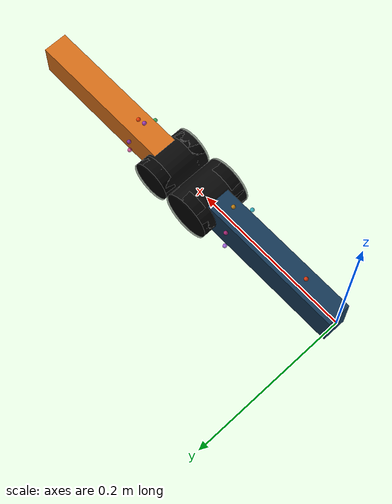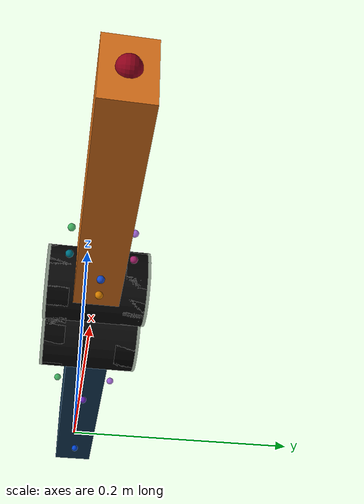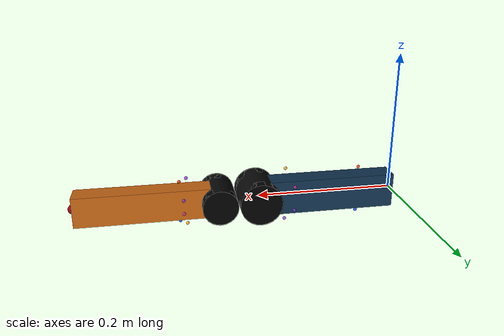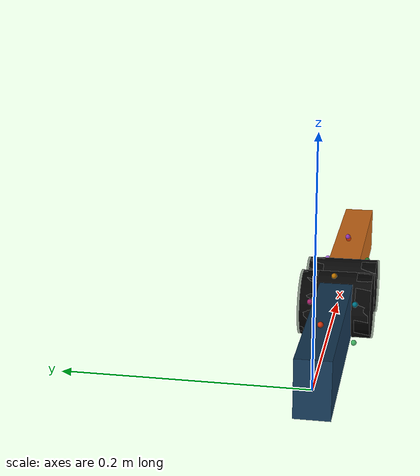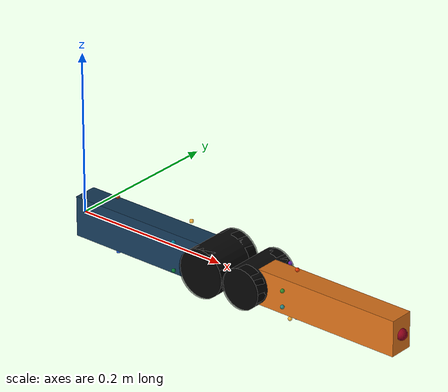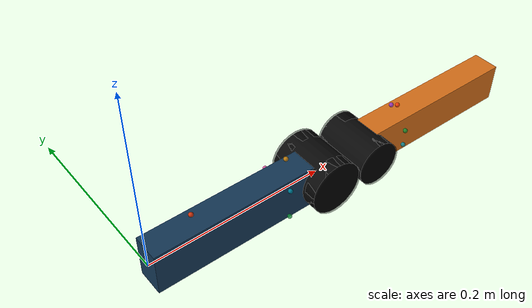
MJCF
<mujoco model="cable_demo_surface_route_rolling_joint_figure_eight">
  <compiler autolimits="true" angle="radian" />
  <size nuser_site="1" />
  <option timestep="0.001" gravity="0 0 0" integrator="implicit" />

  <extension>
    <plugin plugin="mujoco.cable.unilateral">
      <instance name="upper_drive_cable">
        <config key="stiffness" value="1400.0" />
        <config key="damping" value="16.0" />
        <config key="slack" value="0.0002" />
        <config key="home_length" value="auto_initial" />
        <config key="pretension_offset" value="0.0015" />
        <config key="max_tension" value="120.0" />
        <config key="ctrl_mode" value="target_contraction" />
        <config key="route_mode" value="surface" />
        <config key="route_tendon" value="upper_drive_seed" />
        <config key="wrap_geoms" value="proximal_roller distal_roller" />
      </instance>
      <instance name="lower_drive_cable">
        <config key="stiffness" value="1400.0" />
        <config key="damping" value="16.0" />
        <config key="slack" value="0.0002" />
        <config key="home_length" value="auto_initial" />
        <config key="pretension_offset" value="0.0015" />
        <config key="max_tension" value="120.0" />
        <config key="ctrl_mode" value="target_contraction" />
        <config key="route_mode" value="surface" />
        <config key="route_tendon" value="lower_drive_seed" />
        <config key="wrap_geoms" value="proximal_roller distal_roller" />
      </instance>
      <instance name="upper_strap_cable">
        <config key="stiffness" value="20000" />
        <config key="damping" value="600" />
        <config key="home_length" value="auto_initial" />
        <config key="pretension_offset" value="0.00010" />
        <config key="max_tension" value="100" />
        <config key="route_mode" value="surface" />
        <config key="route_tendon" value="upper_strap_seed" />
        <config key="wrap_geoms" value="proximal_roller distal_roller" />
      </instance>
      <instance name="lower_strap_cable">
        <config key="stiffness" value="20000" />
        <config key="damping" value="600" />
        <config key="home_length" value="auto_initial" />
        <config key="pretension_offset" value="0.00010" />
        <config key="max_tension" value="100" />
        <config key="route_mode" value="surface" />
        <config key="route_tendon" value="lower_strap_seed" />
        <config key="wrap_geoms" value="proximal_roller distal_roller" />
      </instance>
      <instance name="left_ligament_a_cable">
        <config key="stiffness" value="5000" />
        <config key="damping" value="150" />
        <config key="home_length" value="auto_initial" />
        <config key="pretension_offset" value="0.00010" />
        <config key="max_tension" value="50" />
        <config key="route_mode" value="surface" />
        <config key="route_tendon" value="left_ligament_a_seed" />
        <config key="wrap_geoms" value="proximal_side_left distal_side_left" />
      </instance>
      <instance name="left_ligament_b_cable">
        <config key="stiffness" value="5000" />
        <config key="damping" value="150" />
        <config key="home_length" value="auto_initial" />
        <config key="pretension_offset" value="0.00010" />
        <config key="max_tension" value="50" />
        <config key="route_mode" value="surface" />
        <config key="route_tendon" value="left_ligament_b_seed" />
        <config key="wrap_geoms" value="proximal_side_left distal_side_left" />
      </instance>
      <instance name="right_ligament_a_cable">
        <config key="stiffness" value="5000" />
        <config key="damping" value="150" />
        <config key="home_length" value="auto_initial" />
        <config key="pretension_offset" value="0.00010" />
        <config key="max_tension" value="50" />
        <config key="route_mode" value="surface" />
        <config key="route_tendon" value="right_ligament_a_seed" />
        <config key="wrap_geoms" value="proximal_side_right distal_side_right" />
      </instance>
      <instance name="right_ligament_b_cable">
        <config key="stiffness" value="5000" />
        <config key="damping" value="150" />
        <config key="home_length" value="auto_initial" />
        <config key="pretension_offset" value="0.00010" />
        <config key="max_tension" value="50" />
        <config key="route_mode" value="surface" />
        <config key="route_tendon" value="right_ligament_b_seed" />
        <config key="wrap_geoms" value="proximal_side_right distal_side_right" />
      </instance>
    </plugin>
  </extension>

  <asset>
    <material name="mat_proximal" rgba="0.08 0.22 0.34 1" />
    <material name="mat_distal" rgba="0.85 0.44 0.10 1" />
    <material name="mat_roller" rgba="0.035 0.035 0.035 1" />
  </asset>

  <default>
    <geom friction="1.4 0.08 0.02" solref="0.003 1" solimp="0.96 0.995 0.001" />
    <site size="0.0025" />
    <default class="route_hint">
      <site size="0.0002" rgba="1 0.82 0 0" user="2" />
    </default>
    <default class="massless_wrap">
      <geom contype="0" conaffinity="0" density="0" material="mat_roller"
            rgba="0.035 0.035 0.035 0.45" />
    </default>
  </default>

  <worldbody>
    <light name="key" pos="0 -0.8 0.55" dir="0 1 -0.45" />
    <camera name="overview" pos="0.16 -0.45 0.20"
            xyaxes="1 0 0 0 0.42 0.9075" />

    <body name="proximal_link" pos="0 0 0" euler="1.57079632679 0 0">
      <geom name="proximal_body" type="box" pos="0.10 0 0"
            size="0.10 0.025 0.015" material="mat_proximal" density="2800"
            contype="0" conaffinity="0" />
      <geom name="proximal_roller" type="cylinder" pos="0.20 0 0"
            size="0.030 0.032" material="mat_roller" density="2800"
            contype="0" conaffinity="0" />
      <geom name="proximal_contact" type="cylinder" pos="0.20 0 0"
            size="0.031 0.032" density="0" contype="1" conaffinity="1"
            rgba="0 0 0 0" />
      <geom name="proximal_side_left" class="massless_wrap" type="cylinder"
            pos="0.20 0 0.026" size="0.030 0.008" />
      <geom name="proximal_side_right" class="massless_wrap" type="cylinder"
            pos="0.20 0 -0.026" size="0.030 0.008" />

      <site name="prox_anchor_upper" pos="0.05 0.035 0" user="1"
            rgba="1 0.25 0.05 0.85" />
      <site name="prox_anchor_lower" pos="0.05 -0.035 0" user="1"
            rgba="0.05 0.35 1 0.85" />
      <site name="prox_strap_upper" pos="0.16 0.040 0" user="1"
            rgba="1 0.62 0.02 0.75" />
      <site name="prox_strap_lower" pos="0.16 -0.040 0" user="1"
            rgba="0.58 0.20 0.95 0.75" />

      <site name="prox_hint_upper" class="route_hint" pos="0.232 0.018 0" />
      <site name="prox_hint_lower" class="route_hint" pos="0.232 -0.018 0" />

      <site name="prox_left_dn" pos="0.15 -0.018 0.020" user="1"
            rgba="0.05 0.62 0.22 0.75" />
      <site name="prox_left_up" pos="0.15 0.018 0.020" user="1"
            rgba="0 0.62 0.72 0.75" />
      <site name="prox_right_dn" pos="0.15 -0.018 -0.020" user="1"
            rgba="0.58 0.22 0.88 0.75" />
      <site name="prox_right_up" pos="0.15 0.018 -0.020" user="1"
            rgba="0.88 0.20 0.58 0.75" />
      <site name="prox_hint_left_a" class="route_hint" pos="0.232 -0.016 0.026" />
      <site name="prox_hint_left_b" class="route_hint" pos="0.232 0.016 0.026" />
      <site name="prox_hint_right_a" class="route_hint" pos="0.232 -0.016 -0.026" />
      <site name="prox_hint_right_b" class="route_hint" pos="0.232 0.016 -0.026" />
    </body>

    <body name="distal_link" pos="0.2575 0 0" euler="1.57079632679 0 0">
      <joint name="distal_free" type="free" damping="0.30" />
      <geom name="distal_roller" type="cylinder" size="0.025 0.032"
            material="mat_roller" mass="0.030" contype="0" conaffinity="0" />
      <geom name="distal_contact" type="cylinder" size="0.026 0.032"
            density="0" contype="1" conaffinity="1" rgba="0 0 0 0" />
      <geom name="distal_body" type="box" pos="0.10 0 0"
            size="0.10 0.022 0.015" material="mat_distal" density="1900"
            contype="0" conaffinity="0" />
      <geom name="distal_side_left" class="massless_wrap" type="cylinder"
            pos="0 0 0.026" size="0.025 0.008" />
      <geom name="distal_side_right" class="massless_wrap" type="cylinder"
            pos="0 0 -0.026" size="0.025 0.008" />

      <site name="dist_anchor_upper" pos="0.055 0.030 0" user="1"
            rgba="1 0.25 0.05 0.85" />
      <site name="dist_anchor_lower" pos="0.055 -0.030 0" user="1"
            rgba="0.05 0.35 1 0.85" />
      <site name="dist_strap_upper" pos="0.045 0.035 0" user="1"
            rgba="0.58 0.20 0.95 0.75" />
      <site name="dist_strap_lower" pos="0.045 -0.035 0" user="1"
            rgba="1 0.62 0.02 0.75" />
      <site name="dist_hint_upper" class="route_hint" pos="-0.028 0.015 0" />
      <site name="dist_hint_lower" class="route_hint" pos="-0.028 -0.015 0" />

      <site name="dist_left_up" pos="0.05 0.010 0.020" user="1"
            rgba="0.05 0.62 0.22 0.75" />
      <site name="dist_left_dn" pos="0.05 -0.010 0.020" user="1"
            rgba="0 0.62 0.72 0.75" />
      <site name="dist_right_up" pos="0.05 0.010 -0.020" user="1"
            rgba="0.58 0.22 0.88 0.75" />
      <site name="dist_right_dn" pos="0.05 -0.010 -0.020" user="1"
            rgba="0.88 0.20 0.58 0.75" />
      <site name="dist_hint_left_a" class="route_hint" pos="-0.027 0.014 0.026" />
      <site name="dist_hint_left_b" class="route_hint" pos="-0.027 -0.014 0.026" />
      <site name="dist_hint_right_a" class="route_hint" pos="-0.027 0.014 -0.026" />
      <site name="dist_hint_right_b" class="route_hint" pos="-0.027 -0.014 -0.026" />

      <site name="tip" pos="0.20 0 0" size="0.007" rgba="0.55 0 0.1 1" />
    </body>
  </worldbody>

  <tendon>
    <spatial name="upper_strap_seed" limited="false" width="0.000000001"
             rgba="1 0.62 0.02 0.9">
      <site site="prox_strap_upper" />
      <site site="prox_hint_upper" />
      <site site="dist_hint_lower" />
      <site site="dist_strap_lower" />
    </spatial>
    <spatial name="lower_strap_seed" limited="false" width="0.000000001"
             rgba="0.58 0.20 0.95 0.9">
      <site site="prox_strap_lower" />
      <site site="prox_hint_lower" />
      <site site="dist_hint_upper" />
      <site site="dist_strap_upper" />
    </spatial>
    <spatial name="upper_drive_seed" limited="false" width="0.000000001"
             rgba="1 0.25 0.05 1">
      <site site="prox_anchor_upper" />
      <site site="prox_hint_upper" />
      <site site="dist_hint_lower" />
      <site site="dist_anchor_lower" />
    </spatial>
    <spatial name="lower_drive_seed" limited="false" width="0.000000001"
             rgba="0.05 0.35 1 1">
      <site site="prox_anchor_lower" />
      <site site="prox_hint_lower" />
      <site site="dist_hint_upper" />
      <site site="dist_anchor_upper" />
    </spatial>
    <spatial name="left_ligament_a_seed" limited="false" width="0.000000001"
             rgba="0.05 0.62 0.22 0.9">
      <site site="prox_left_dn" />
      <site site="prox_hint_left_a" />
      <site site="dist_hint_left_a" />
      <site site="dist_left_up" />
    </spatial>
    <spatial name="left_ligament_b_seed" limited="false" width="0.000000001"
             rgba="0 0.62 0.72 0.9">
      <site site="prox_left_up" />
      <site site="prox_hint_left_b" />
      <site site="dist_hint_left_b" />
      <site site="dist_left_dn" />
    </spatial>
    <spatial name="right_ligament_a_seed" limited="false" width="0.000000001"
             rgba="0.58 0.22 0.88 0.9">
      <site site="prox_right_dn" />
      <site site="prox_hint_right_a" />
      <site site="dist_hint_right_a" />
      <site site="dist_right_up" />
    </spatial>
    <spatial name="right_ligament_b_seed" limited="false" width="0.000000001"
             rgba="0.88 0.20 0.58 0.9">
      <site site="prox_right_up" />
      <site site="prox_hint_right_b" />
      <site site="dist_hint_right_b" />
      <site site="dist_right_dn" />
    </spatial>
  </tendon>

  <actuator>
    <plugin name="upper_drive_contraction" tendon="upper_drive_seed" gear="0"
            instance="upper_drive_cable" ctrllimited="true"
            ctrlrange="-0.006 0.060" />
    <plugin name="lower_drive_contraction" tendon="lower_drive_seed" gear="0"
            instance="lower_drive_cable" ctrllimited="true"
            ctrlrange="-0.006 0.060" />
  </actuator>

  <sensor>
    <plugin name="upper_drive_state" instance="upper_drive_cable" />
    <plugin name="lower_drive_state" instance="lower_drive_cable" />
    <plugin name="upper_strap_state" instance="upper_strap_cable" />
    <plugin name="lower_strap_state" instance="lower_strap_cable" />
    <actuatorfrc name="upper_drive_force" actuator="upper_drive_contraction" />
    <actuatorfrc name="lower_drive_force" actuator="lower_drive_contraction" />
    <framepos name="distal_position" objtype="body" objname="distal_link" />
    <framequat name="distal_orientation" objtype="body" objname="distal_link" />
  </sensor>
</mujoco>
